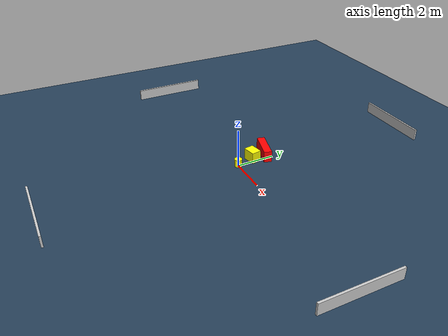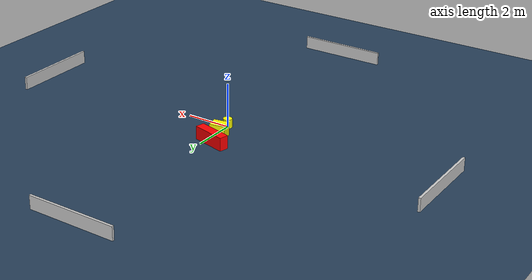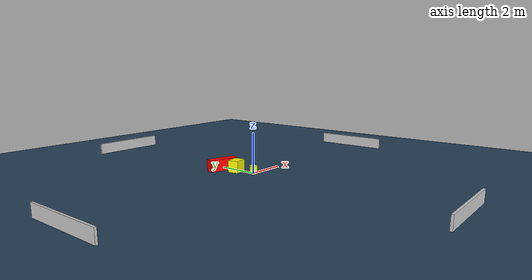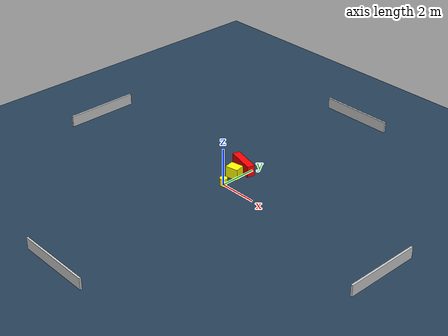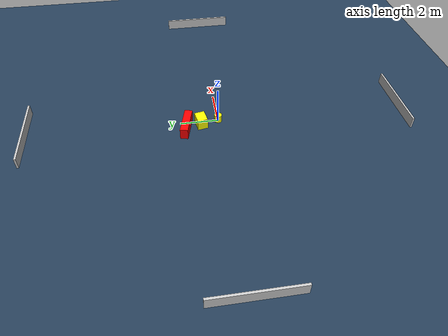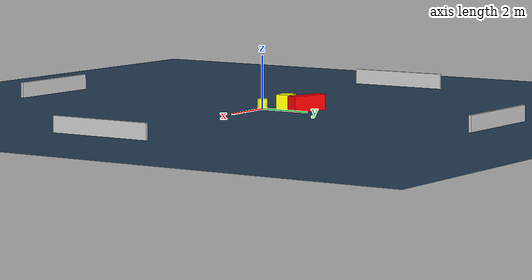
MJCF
<?xml version="1.0" ?>
<mujoco model="generated_environment">
  <option timestep="0.01" integrator="RK4" cone="elliptic"/>
  <default>
    <geom density="1"/>
  </default>
  <asset>
    <texture builtin="gradient" height="3072" name="skybox" rgb1="0.3 0.5 0.7" rgb2="0 0 0" type="skybox" width="512"/>
    <texture builtin="checker" height="300" name="groundplane" rgb1="0.2 0.3 0.4" rgb2="0.1 0.2 0.3" type="2d" width="300"/>
    <material name="groundplane" reflectance="0.2" texrepeat="5 5" texture="groundplane"/>
  </asset>
  <worldbody>
    <light dir="0 0 -1" directional="true" pos="0 0 1.5"/>
    <geom condim="3" friction="0.5 0.005 0.001" material="groundplane" name="floor" pos="0 0 0" size="0 0 0.05" type="plane"/>
    <body name="walls">
      <geom name="wall_1" condim="4" pos="-10.0 0.0 0.3" rgba="0.800000011920929 0.800000011920929 0.800000011920929 1.0" size="0.05 2.0 0.3" type="box"/>
      <geom name="wall_2" condim="4" pos="10.0 0.0 0.3" rgba="0.800000011920929 0.800000011920929 0.800000011920929 1.0" size="0.05 2.0 0.3" type="box"/>
      <geom name="wall_3" condim="4" pos="0.0 -10.0 0.3" rgba="0.800000011920929 0.800000011920929 0.800000011920929 1.0" size="2.0 0.05 0.3" type="box"/>
      <geom name="wall_4" condim="4" pos="0.0 10.0 0.3" rgba="0.800000011920929 0.800000011920929 0.800000011920929 1.0" size="2.0 0.05 0.3" type="box"/>
    </body>
    <body name="robot">
      <joint name="joint_x" type="slide" pos="0 0 0" axis="1 0 0"/>
      <joint name="joint_y" type="slide" pos="0 0 0" axis="0 1 0"/>
      <geom name="robot" type="cylinder" pos="0.0 0.0 0.2" size="0.2 0.2 0.0" mass="5.0" friction="1.0 0.005 0.0001" condim="4" rgba="1.0 1.0 0.0 1.0"/>
    </body>
    <body name="obstacle_1_movable">
      <geom name="obstacle_1_movable" condim="4" pos="-0.21157385950253188 0.9351570827225114 0.3" euler="0 0 100.49917591410517" friction="0.0 0.005 0.001" rgba="1.0 1.0 0.0 1.0" size="0.2657848258917007 0.34588527652865003 0.3" type="box" mass="0.1"/>
      <joint type="free"/>
    </body>
    <body name="obstacle_2_static">
      <geom name="obstacle_2_static" condim="4" pos="-0.38581006477160756 1.7260966409051968 0.3" euler="0 0 345.6422703819536" friction="0.0 0.005 0.001" rgba="1.0 0.0 0.0 1.0" size="0.773207877001086 0.20415184092145802 0.3" type="box"/>
    </body>
  </worldbody>
  <actuator>
    <motor name="actuator_x" joint="joint_x" gear="1" ctrlrange="-1 1"/>
    <motor name="actuator_y" joint="joint_y" gear="1" ctrlrange="-1 1"/>
  </actuator>
</mujoco>
